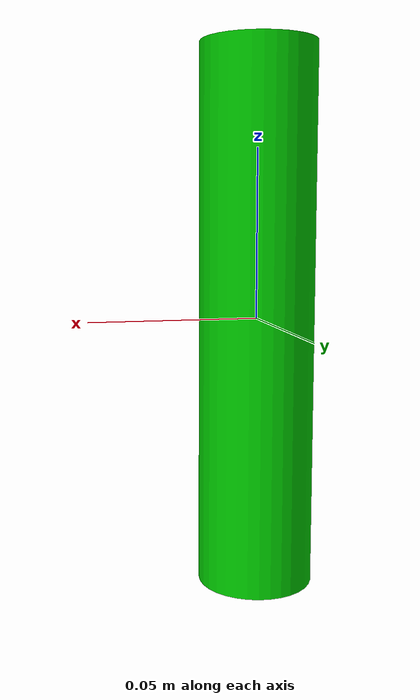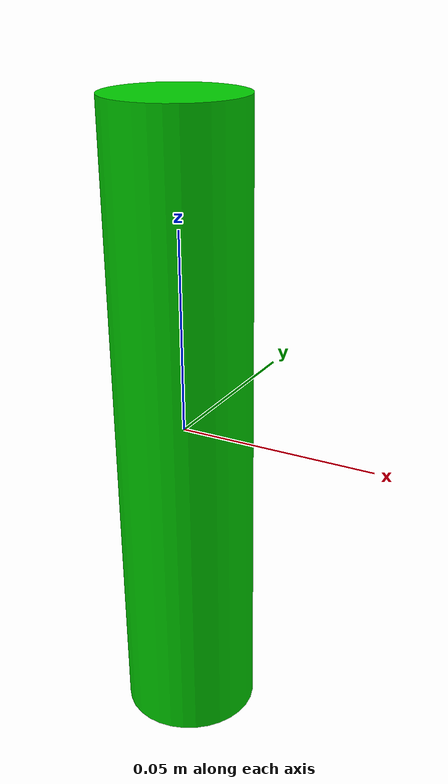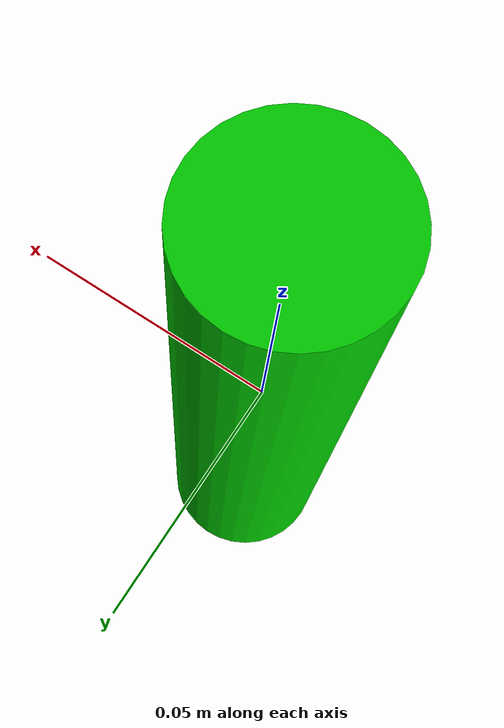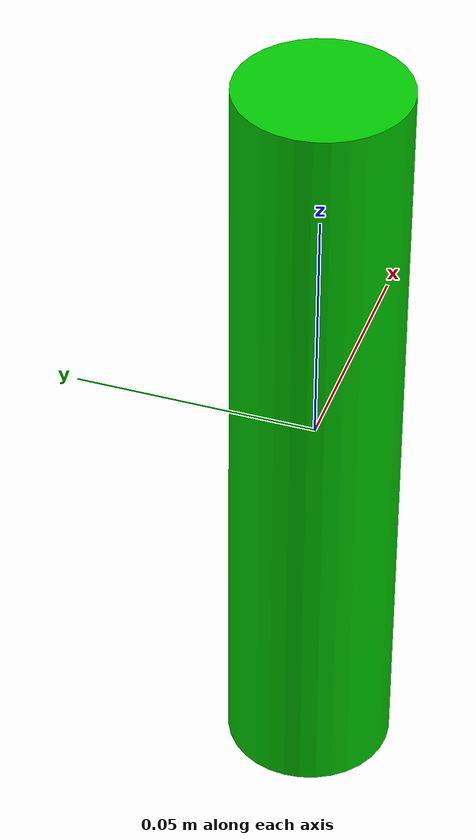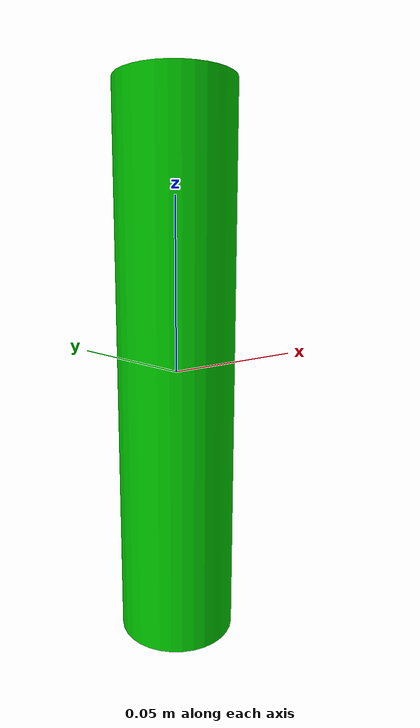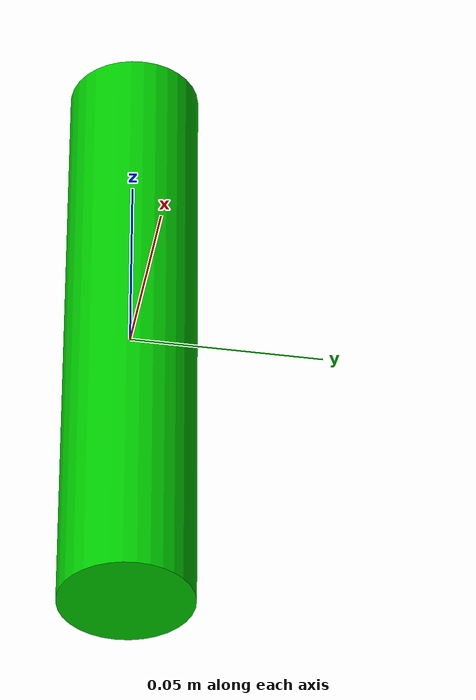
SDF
<?xml version="1.0" ?>
<sdf version='1.5'>
  <model name="insert_task_cylinder2_block3">
      <link name='link'>
        <inertial>
        <pose>0 0 0 0 0 0</pose>
          <mass>0.2</mass>
          <inertia>
            <ixx>0.4447</ixx>
            <ixy>0.0</ixy>
            <ixz>0.0</ixz>
            <iyy>0.4447</iyy>
            <iyz>0.0</iyz>
            <izz>0.0361</izz>
          </inertia>
        </inertial>
        <collision name='collision'>
        <pose>0 0 0 0 0 0</pose>
          <geometry>
            <mesh>
              <uri>model://insert_task_cylinder2_block3/meshes/insert_task_cylinder2_block3.dae</uri>
              <scale>0.9 0.9 1</scale>
            </mesh>
          </geometry>
            <surface>
            <friction>
              <ode>
                <mu>30.0</mu>
                <mu2>30.0</mu2>
              </ode>
            </friction>
          </surface>
        </collision>
        <visual name='visual'>
          <geometry>
            <mesh>
              <uri>model://insert_task_cylinder2_block3/meshes/insert_task_cylinder2_block3.dae</uri>
              <scale>0.9 0.9 1</scale>
            </mesh>
          </geometry>
        </visual>
        <gravity>1</gravity>
      </link>
  </model>
</sdf>
